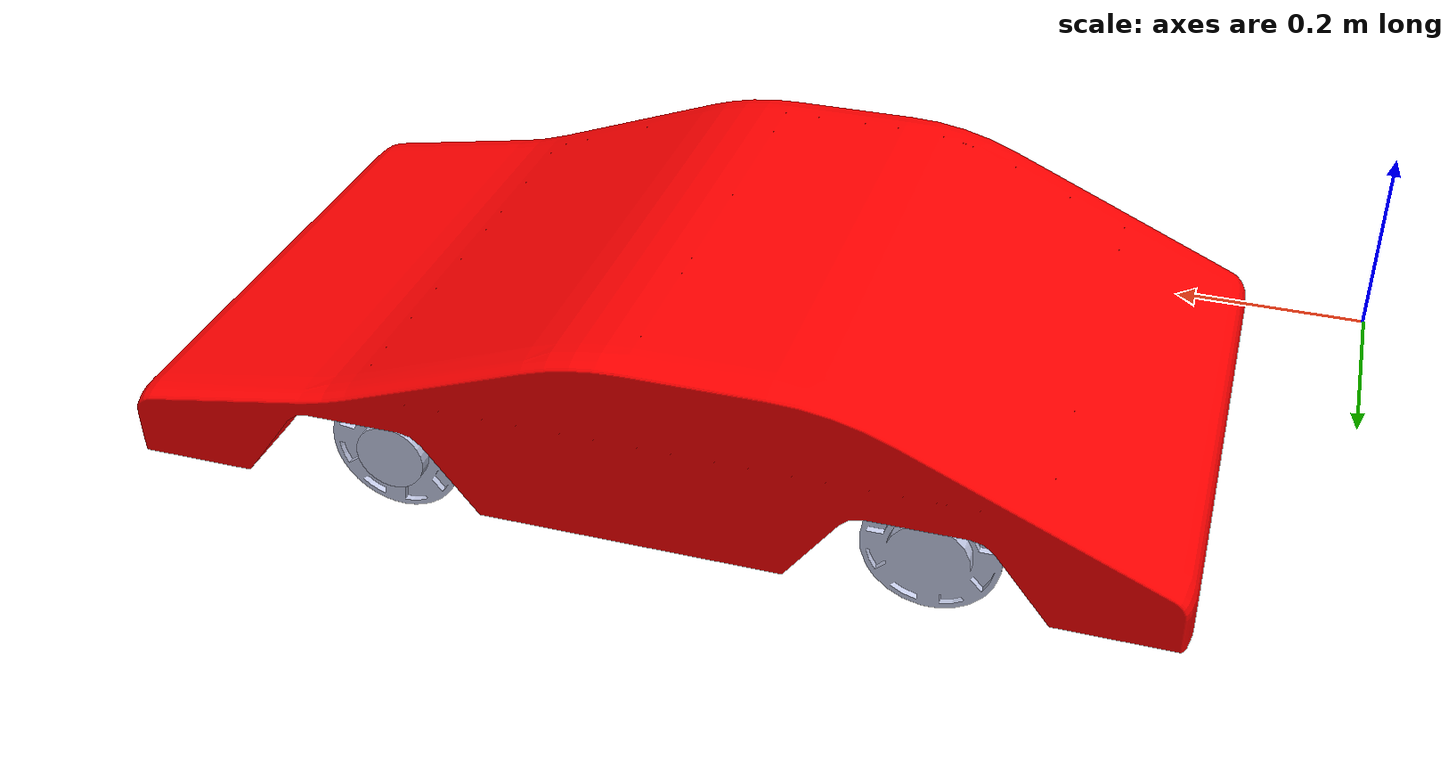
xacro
<?xml version="1.0" encoding="utf-8"?>
<robot
  name="vehicle_urdf_updated">
  <link
    name="base_link">
    <inertial>
      <origin
        xyz="0.633646238955482 0.380995985063104 0.134713561280758"
        rpy="0 0 0" />
      <mass
        value="40.8578739183061" />
      <inertia
        ixx="0.995761028354978"
        ixy="-8.76320048207689E-06"
        ixz="0.00865884640055963"
        iyy="2.14944321692204"
        iyz="1.27940269792283E-05"
        izz="2.95983860146672" />
    </inertial>
    <visual>
      <origin
        xyz="0 0 0"
        rpy="0 0 0" />
      <geometry>
        <mesh
          filename="package://vehicle_urdf_updated/meshes/base_link.STL" />
      </geometry>
      <material
        name="">
        <color
          rgba="1 0 0 1" />
      </material>
    </visual>
    <collision>
      <origin
        xyz="0 0 0"
        rpy="0 0 0" />
      <geometry>
        <mesh
          filename="package://vehicle_urdf_updated/meshes/base_link.STL" />
      </geometry>
    </collision>
  </link>
  <link
    name="rear_transmission">
    <inertial>
      <origin
        xyz="-0.203199999999985 5.82867087928207E-16 8.21565038222616E-15"
        rpy="0 0 0" />
      <mass
        value="1.62545461137797" />
      <inertia
        ixx="0.00275735422572006"
        ixy="-2.88882404288101E-18"
        ixz="9.55642867448498E-19"
        iyy="0.0414194977112141"
        iyz="9.24865283108885E-09"
        izz="0.0414191060690131" />
    </inertial>
    <visual>
      <origin
        xyz="0 0 0"
        rpy="0 0 0" />
      <geometry>
        <mesh
          filename="package://vehicle_urdf_updated/meshes/rear_transmission.STL" />
      </geometry>
      <material
        name="">
        <color
          rgba="0.792156862745098 0.819607843137255 0.933333333333333 1" />
      </material>
    </visual>
    <collision>
      <origin
        xyz="0 0 0"
        rpy="0 0 0" />
      <geometry>
        <mesh
          filename="package://vehicle_urdf_updated/meshes/rear_transmission.STL" />
      </geometry>
    </collision>
  </link>
  <joint
    name="rear_transmission_joint"
    type="continuous">
    <origin
      xyz="0.3556 0.1778 0.0635"
      rpy="-1.5708 0 -1.5708" />
    <parent
      link="base_link" />
    <child
      link="rear_transmission" />
    <axis
      xyz="1 0 0" />
  </joint>
  <link
    name="front_left_pivot">
    <inertial>
      <origin
        xyz="0.0419537233296554 0.0535456913177643 -1.79199277638986E-09"
        rpy="0 0 0" />
      <mass
        value="0.342307075044178" />
      <inertia
        ixx="0.000402629200989729"
        ixy="0.000289839368110352"
        ixz="-3.70439072569397E-11"
        iyy="0.000794160741830236"
        iyz="-6.47936725203429E-14"
        izz="0.00107762693577772" />
    </inertial>
    <visual>
      <origin
        xyz="0 0 0"
        rpy="0 0 0" />
      <geometry>
        <mesh
          filename="package://vehicle_urdf_updated/meshes/front_left_pivot.STL" />
      </geometry>
      <material
        name="">
        <color
          rgba="0.792156862745098 0.819607843137255 0.933333333333333 1" />
      </material>
    </visual>
    <collision>
      <origin
        xyz="0 0 0"
        rpy="0 0 0" />
      <geometry>
        <mesh
          filename="package://vehicle_urdf_updated/meshes/front_left_pivot.STL" />
      </geometry>
    </collision>
  </link>
  <joint
    name="front_left_pivot_joint"
    type="continuous">
    <origin
      xyz="0.8636 0.4572 0.030137"
      rpy="1.5708 0 1.5708" />
    <parent
      link="base_link" />
    <child
      link="front_left_pivot" />
    <axis
      xyz="0 1 0" />
  </joint>
  <link
    name="front_left_wheel">
    <inertial>
      <origin
        xyz="0.0253999999999999 -1.11022302462516E-16 2.77555756156289E-17"
        rpy="0 0 0" />
      <mass
        value="0.555000200309947" />
      <inertia
        ixx="0.001204932765174"
        ixy="7.58500037625292E-20"
        ixz="5.19358445636026E-20"
        iyy="0.000713183485157935"
        iyz="2.71050543121376E-20"
        izz="0.000713183485157934" />
    </inertial>
    <visual>
      <origin
        xyz="0 0 0"
        rpy="0 0 0" />
      <geometry>
        <mesh
          filename="package://vehicle_urdf_updated/meshes/front_left_wheel.STL" />
      </geometry>
      <material
        name="">
        <color
          rgba="0.792156862745098 0.819607843137255 0.933333333333333 1" />
      </material>
    </visual>
    <collision>
      <origin
        xyz="0 0 0"
        rpy="0 0 0" />
      <geometry>
        <mesh
          filename="package://vehicle_urdf_updated/meshes/front_left_wheel.STL" />
      </geometry>
    </collision>
  </link>
  <joint
    name="front_left_wheel_joint"
    type="continuous">
    <origin
      xyz="0.0635 0.033363 0"
      rpy="1.432 0 0" />
    <parent
      link="front_left_pivot" />
    <child
      link="front_left_wheel" />
    <axis
      xyz="1 0 0" />
  </joint>
  <link
    name="front_right_pivot">
    <inertial>
      <origin
        xyz="0.0419537233296554 -0.0535456913177643 1.79199277638986E-09"
        rpy="0 0 0" />
      <mass
        value="0.342307075044179" />
      <inertia
        ixx="0.000402629200989729"
        ixy="-0.000289839368110352"
        ixz="3.70439077980642E-11"
        iyy="0.000794160741830237"
        iyz="-6.47936358096042E-14"
        izz="0.00107762693577773" />
    </inertial>
    <visual>
      <origin
        xyz="0 0 0"
        rpy="0 0 0" />
      <geometry>
        <mesh
          filename="package://vehicle_urdf_updated/meshes/front_right_pivot.STL" />
      </geometry>
      <material
        name="">
        <color
          rgba="0.792156862745098 0.819607843137255 0.933333333333333 1" />
      </material>
    </visual>
    <collision>
      <origin
        xyz="0 0 0"
        rpy="0 0 0" />
      <geometry>
        <mesh
          filename="package://vehicle_urdf_updated/meshes/front_right_pivot.STL" />
      </geometry>
    </collision>
  </link>
  <joint
    name="front_right_pivot_joint"
    type="continuous">
    <origin
      xyz="0.8636 0.3048 0.030137"
      rpy="-1.5708 0 -1.5708" />
    <parent
      link="base_link" />
    <child
      link="front_right_pivot" />
    <axis
      xyz="0 1 0" />
  </joint>
  <link
    name="front_right_wheel">
    <inertial>
      <origin
        xyz="-0.0254 1.11022302462516E-16 -1.11022302462516E-16"
        rpy="0 0 0" />
      <mass
        value="0.555000200309947" />
      <inertia
        ixx="0.001204932765174"
        ixy="4.1822253051509E-20"
        ixz="-7.14033442007878E-20"
        iyy="0.000713183485157937"
        iyz="-1.35525271560688E-19"
        izz="0.000713183485157937" />
    </inertial>
    <visual>
      <origin
        xyz="0 0 0"
        rpy="0 0 0" />
      <geometry>
        <mesh
          filename="package://vehicle_urdf_updated/meshes/front_right_wheel.STL" />
      </geometry>
      <material
        name="">
        <color
          rgba="0.792156862745098 0.819607843137255 0.933333333333333 1" />
      </material>
    </visual>
    <collision>
      <origin
        xyz="0 0 0"
        rpy="0 0 0" />
      <geometry>
        <mesh
          filename="package://vehicle_urdf_updated/meshes/front_right_wheel.STL" />
      </geometry>
    </collision>
  </link>
  <joint
    name="front_right_wheel_joint"
    type="continuous">
    <origin
      xyz="0.0635 -0.033363 0"
      rpy="2.1463 0 3.1416" />
    <parent
      link="front_right_pivot" />
    <child
      link="front_right_wheel" />
    <axis
      xyz="1 0 0" />
  </joint>

<transmission name="rear_wheel_transmission">
  <type>transmission_interface/SimpleTransmission</type>
  <joint name="rear_transmission_joint">
    <hardwareInterface>hardware_interface/VelocityJointInterface</hardwareInterface>
  </joint>
  <actuator name="back_motor">
    <hardwareInterface>hardware_interface/VelocityJointInterface</hardwareInterface>
    <mechanicalReduction>1</mechanicalReduction>
  </actuator>
</transmission>

<transmission name="front_left_pivot_transmission">
  <type>transmission_interface/SimpleTransmission</type>
  <joint name="front_left_pivot_joint">
    <hardwareInterface>hardware_interface/EffortJointInterface</hardwareInterface>
  </joint>
  <actuator name="front_left_pivot_motor">
    <hardwareInterface>hardware_interface/EffortJointInterface</hardwareInterface>
    <mechanicalReduction>1</mechanicalReduction>
  </actuator>
</transmission>

<transmission name="front_right_pivot_transmission">
  <type>transmission_interface/SimpleTransmission</type>
  <joint name="front_right_pivot_joint">
    <hardwareInterface>hardware_interface/EffortJointInterface</hardwareInterface>
  </joint>
  <actuator name="front_right_pivot_motor">
    <hardwareInterface>hardware_interface/EffortJointInterface</hardwareInterface>
    <mechanicalReduction>1</mechanicalReduction>
  </actuator>
</transmission>

</robot>
